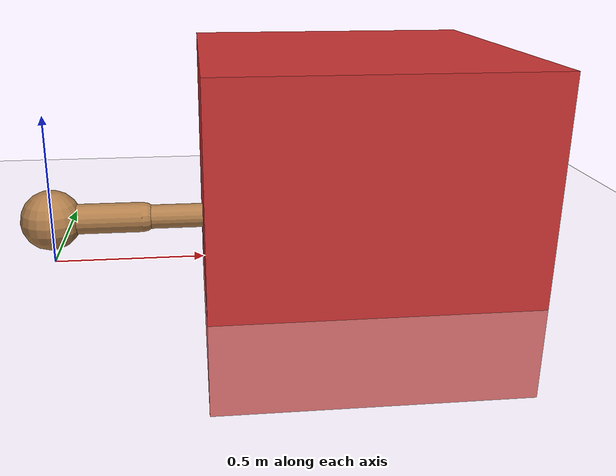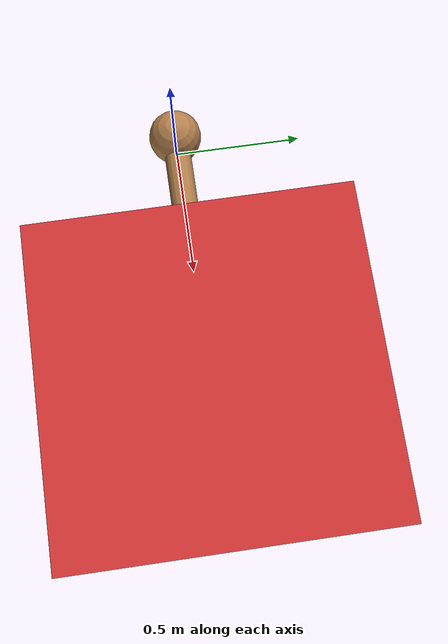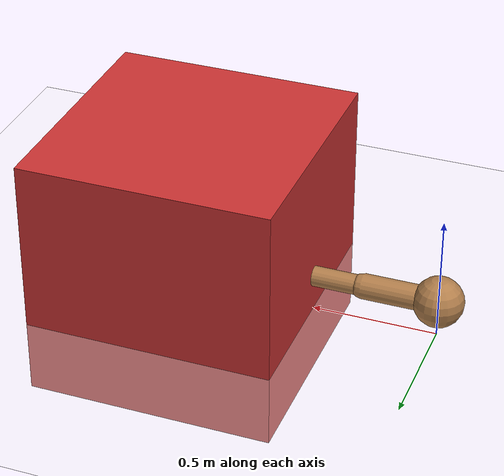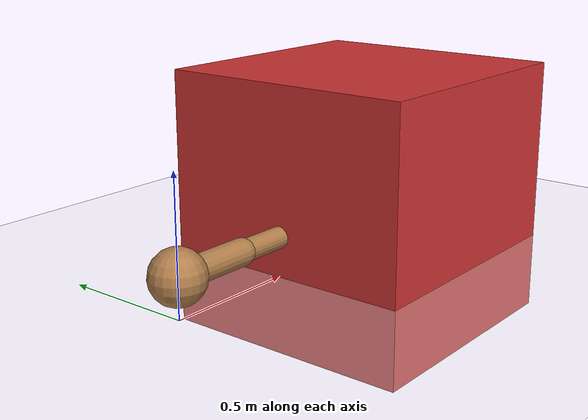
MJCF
<mujoco model="rrbot_arm">
  <asset>
    <texture name="skybox" type="skybox" builtin="gradient" rgb1=".2 .3 .4" rgb2="0 0 0" width="800" height="800" mark="random" markrgb="1 1 1" />
    <texture name="grid" type="2d" builtin="checker" rgb1=".2 .1 .2" rgb2=".3 .2 .3" width="300" height="300" mark="edge" markrgb=".3 .2 .3" />
    <material name="grid" texture="grid" texrepeat="1 1" texuniform="true" reflectance=".2" />
    <material name="self" rgba=".7 .5 .3 1" />
    <material name="plain_white" rgba="1 1 1 1" specular="0" shininess="0" />
  </asset>
  <visual>
    <headlight ambient=".4 .4 .4" diffuse=".8 .8 .8" specular="0 0 0" />
    <map znear=".001" />
    <quality shadowsize="16384" />
  </visual>
  <compiler angle="degree" />
  <option integrator="RK4" timestep="0.01" />
  <default>
    <joint armature="1" damping="1" limited="true" />
    <geom conaffinity="0" condim="3" density="5.0" friction="1.0 0.5 0.5" margin="0.01" rgba=".7 .5 .3 1" />
  </default>
  <worldbody>
    <light cutoff="100" diffuse="1 1 1" dir="0.3 0 -1.3" directional="true" exponent="1" pos="-30 0 130" specular=".1 .1 .1" />
    <geom conaffinity="1" condim="3" name="floor" pos="0 0 0" rgba="1 1 1 1" size="200 200 .125" type="plane" material="grid" />
    <body name="0" pos="0 0 0.15">
      <camera name="track" mode="trackcom" pos="0 -3 0.3" xyaxes="1 0 0 0 0 1" />
      <geom pos="0 0 0" size="0.1" type="sphere" />
      <!-- no free joint: base is fixed to world -->
      <!-- shoulder: connects base to upper arm -->
      <body name="1" pos="0 0 0">
        <joint axis="0 0 1" name="1_joint" pos="0 0 0" range="-180 180" type="hinge" velocity="3.0" />
        <geom fromto="0 0 0 0.3 0 0" size="0.05" type="capsule" />
        <!-- elbow: connects upper arm to forearm; pos is endpoint of upper arm geom -->
        <!-- body name "11" = xml_robot.py reindex: 1st child(ind=1) of body "1" → str(1)+"1" = "11" -->
        <body name="11" pos="0.3 0 0">
          <joint axis="0 0 1" name="11_joint" pos="0 0 0" range="-180 180" type="hinge" velocity="3.0" />
          <geom fromto="0 0 0 0.25 0 0" size="0.04" type="capsule" />
        </body>
      </body>
    </body>
    <body name="cube" pos="1.0 0 0.20">
      <joint name="cube_slide" type="slide" axis="1 0 0" damping="10.0" range="-2 200" />
      <joint name="cube_slide2" type="slide" axis="0 1 0" damping="10.0" range="-100 100" />
      <geom name="cube_geom" type="box" size="0.5 0.5 0.5" rgba="0.8 0.2 0.2 1.0" friction="0.5 0.1 0.1" density="2.7" contype="1" conaffinity="1" />
    </body>
  </worldbody>
  <actuator>
    <motor ctrllimited="true" ctrlrange="-1.0 1.0" joint="1_joint" gear="150" name="1_joint" />
    <motor ctrllimited="true" ctrlrange="-1.0 1.0" joint="11_joint" gear="100" name="11_joint" />
  </actuator>
</mujoco>
